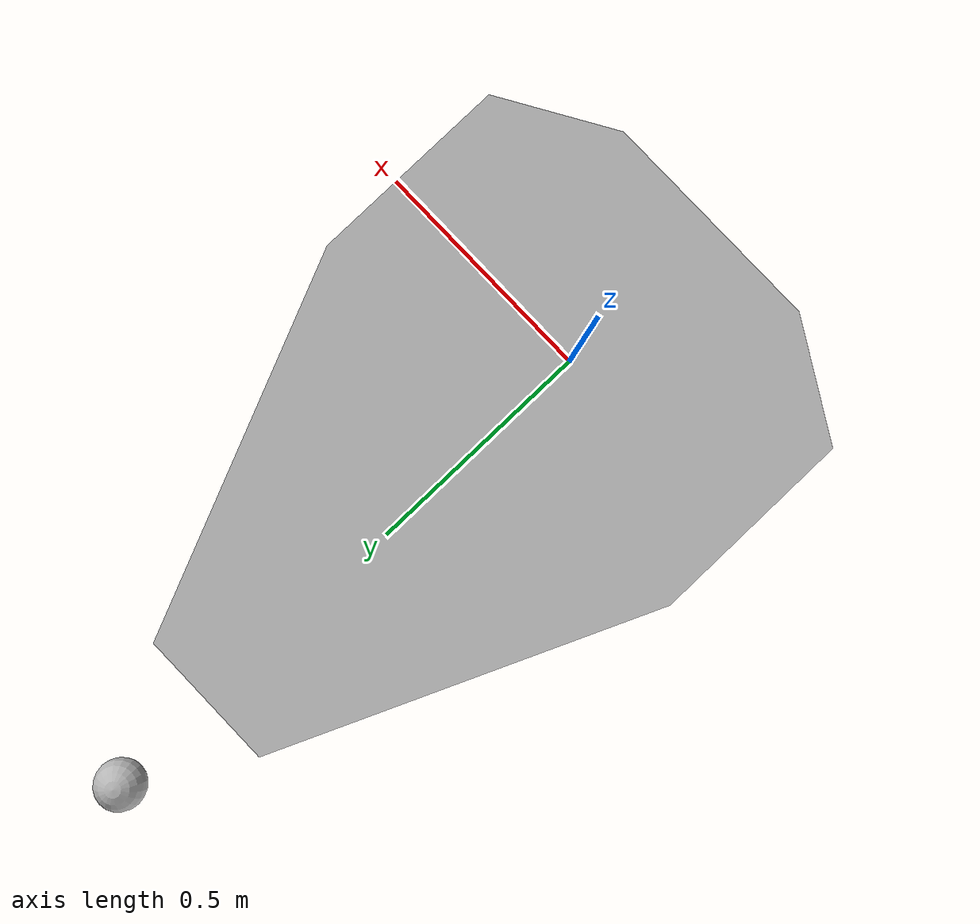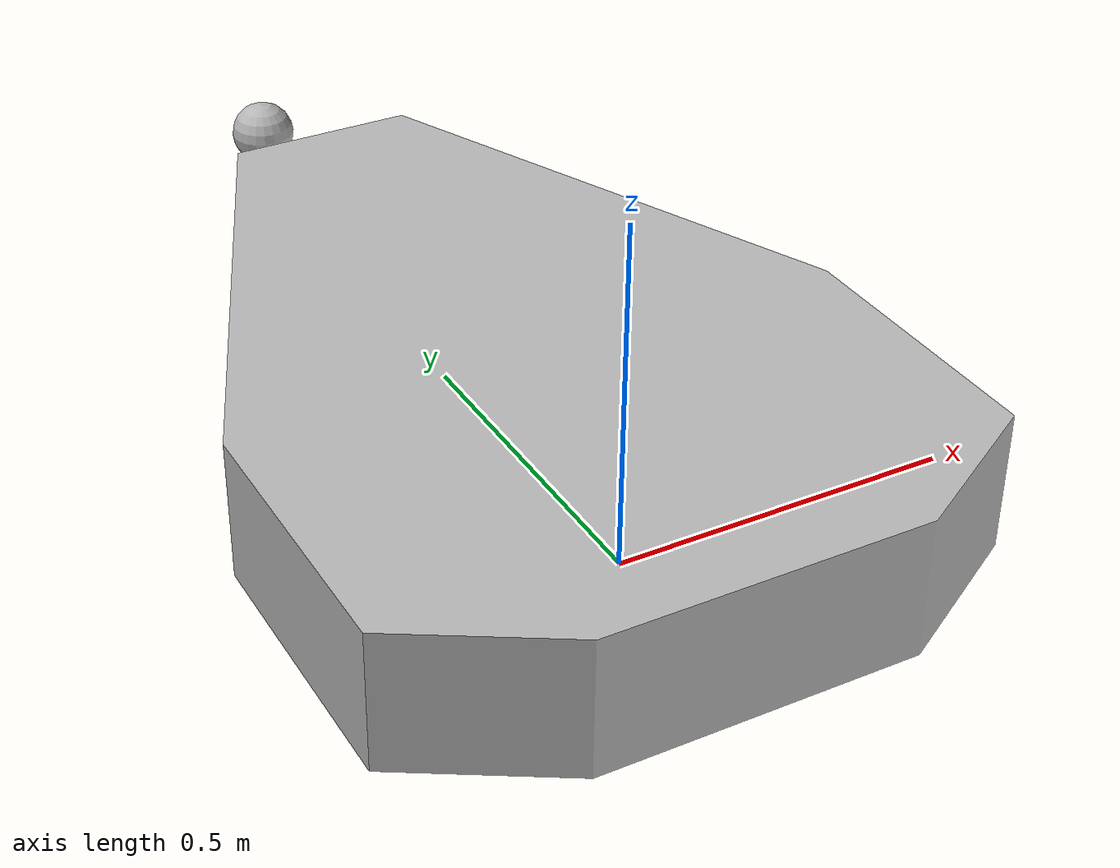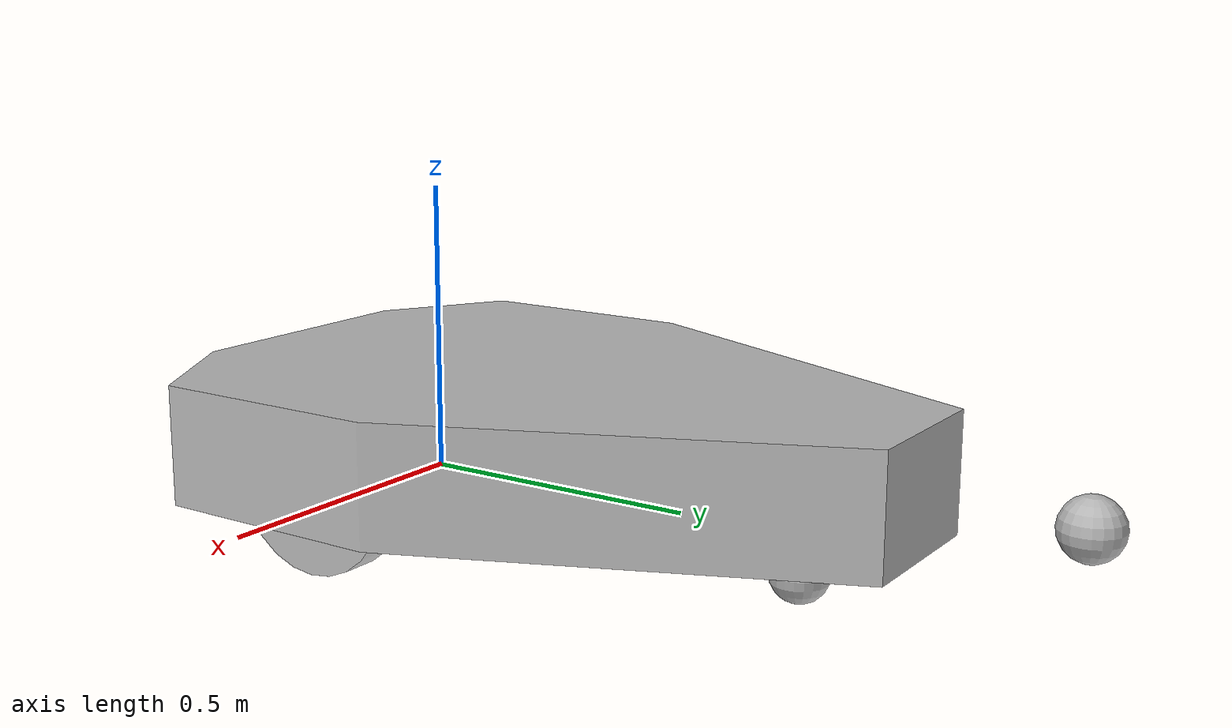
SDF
<?xml version='1.0'?>
<sdf version='1.4'>
  <model name="Kratos">

   <static>false</static>
   <link name='chassis'>
    <pose>0 -0.33 0 0 0 0</pose>

    <inertial>
      <pose>0 0.5 0.1 0 -0 0</pose>
      <mass>10</mass>
    </inertial>

    <collision name='collision'>
      <geometry>
        <mesh>
          <scale>0.001 0.001 0.001</scale> <!-- the DAE is in millimeters. Gazebo is in meters. -->
          <uri>model://gazebo/Prometheus.dae</uri>
        </mesh>
      </geometry>
    </collision>

    <visual name='visual'>
      <geometry>
        <mesh>
          <scale>0.001 0.001 0.001</scale>
          <uri>model://gazebo/Prometheus.dae</uri>
        </mesh>
      </geometry>
    </visual>

    <collision name='caster_collision'>
      <pose>0 1.05 -0.057 0 0 0</pose>
      <geometry>
        <sphere>
          <radius>.05</radius>
        </sphere>
      </geometry>

      <surface>
        <friction>
          <ode>
            <mu>0</mu>
            <mu2>0</mu2>
            <slip1>1.0</slip1>
            <slip2>1.0</slip2>
          </ode>
        </friction>
      </surface>
    </collision>

    <visual name='caster_visual'>
      <pose>0 1.05 -0.057 0 0 0</pose>
      <geometry>
        <sphere>
          <radius>.05</radius>
        </sphere>
      </geometry>
    </visual>

    <visual name='camra_visual'>
      <pose>0 1.5 0.1 0 0 0</pose>
      <geometry>
        <sphere>
          <radius>.05</radius>
        </sphere>
      </geometry>
    </visual>

    <sensor type="depth" name="xtion_sensor">
      <pose>0 1 0.1 0 0 1.57</pose>
      <always_on>true</always_on>
      <update_rate>20.0</update_rate>
      <topic>tteesstt</topic>
      <camera>
        <horizontal_fov>1.047</horizontal_fov>
        <image>
          <width>640</width>
          <height>480</height>
          <format>R8G8B8</format>
        </image>
        <clip>
          <near>0.05</near>
          <far>5</far>
        </clip>
      </camera>
      <visualize>true</visualize>

    </sensor>

  </link>

  <link name="left_wheel">
    <pose>0.31 0.0 0.05 0 1.5707 0</pose>
    <collision name="collision">
      <geometry>
        <cylinder>
          <radius>.157</radius>
          <length>.065</length>
        </cylinder>
      </geometry>

      <surface>
        <friction>
          <ode>
            <mu>100.0</mu>
            <mu2>100.0</mu2>
            <slip1>1.0</slip1>
            <slip2>1.0</slip2>
          </ode>
        </friction>
      </surface>

    </collision>
    <visual name="visual">
      <geometry>
        <cylinder>
          <radius>.157</radius>
          <length>.065</length>
        </cylinder>
      </geometry>
    </visual>
  </link>

  <link name="right_wheel">
    <pose>-0.31 0.0 0.05 0 1.5707 0</pose>
    <collision name="collision">
      <geometry>
        <cylinder>
          <radius>.157</radius>
          <length>.065</length>
        </cylinder>
      </geometry>

      <surface>
        <friction>
          <ode>
            <mu>100.0</mu>
            <mu2>100.0</mu2>
            <slip1>1.0</slip1>
            <slip2>1.0</slip2>
          </ode>
        </friction>
      </surface>

    </collision>
    <visual name="visual">
      <geometry>
        <cylinder>
          <radius>.157</radius>
          <length>.065</length>
        </cylinder>
      </geometry>
    </visual>
  </link>

  <joint type="revolute" name="left_wheel_hinge">
    <pose>0 0 -0.03 0 0 0</pose>
    <child>left_wheel</child>
    <parent>chassis</parent>
    <axis>
      <xyz>1 0 0</xyz>
      <dynamics>
        <friction>20.0</friction>
        <damping>20.0</damping>
      </dynamics>
    </axis>
  </joint>

  <joint type="revolute" name="right_wheel_hinge">
    <pose>0 0 0.03 0 0 0</pose>
    <child>right_wheel</child>
    <parent>chassis</parent>
    <axis>
      <xyz>1 0 0</xyz>
      <dynamics>
        <friction>20.0</friction>
        <damping>20.0</damping>
      </dynamics>
    </axis>
  </joint>

  <plugin name="kratos" filename="libkratos.so"/>
</model>
</sdf>
